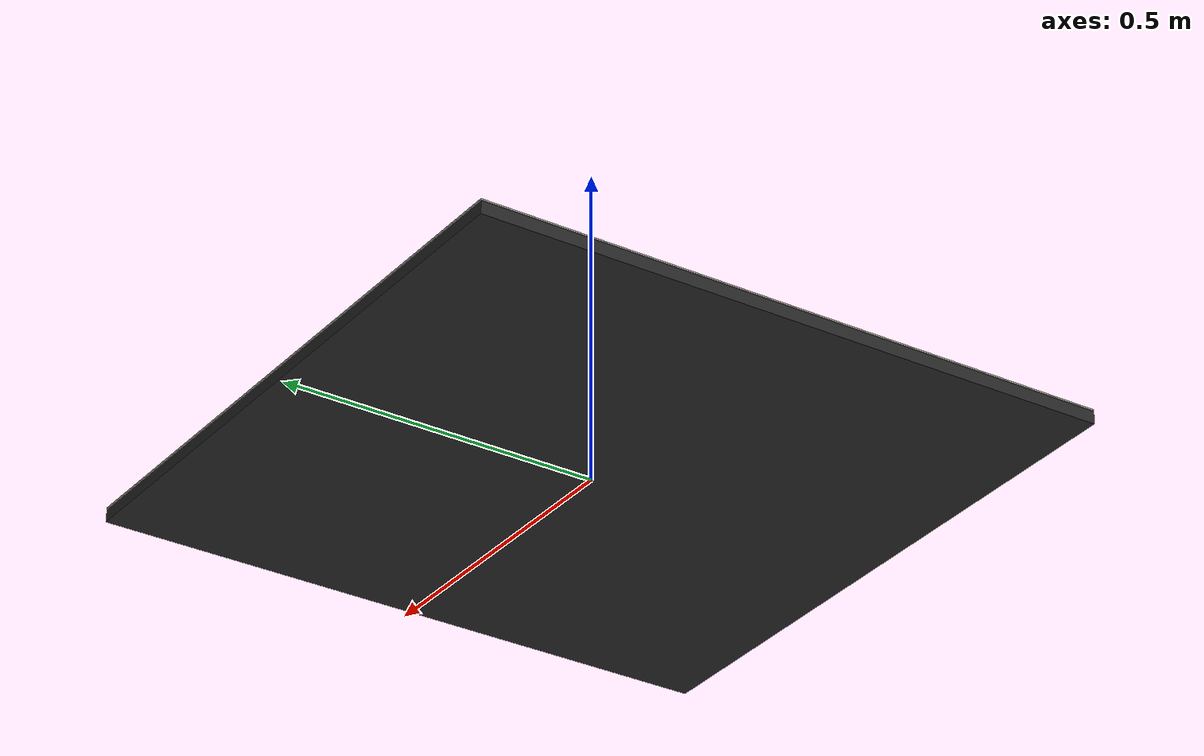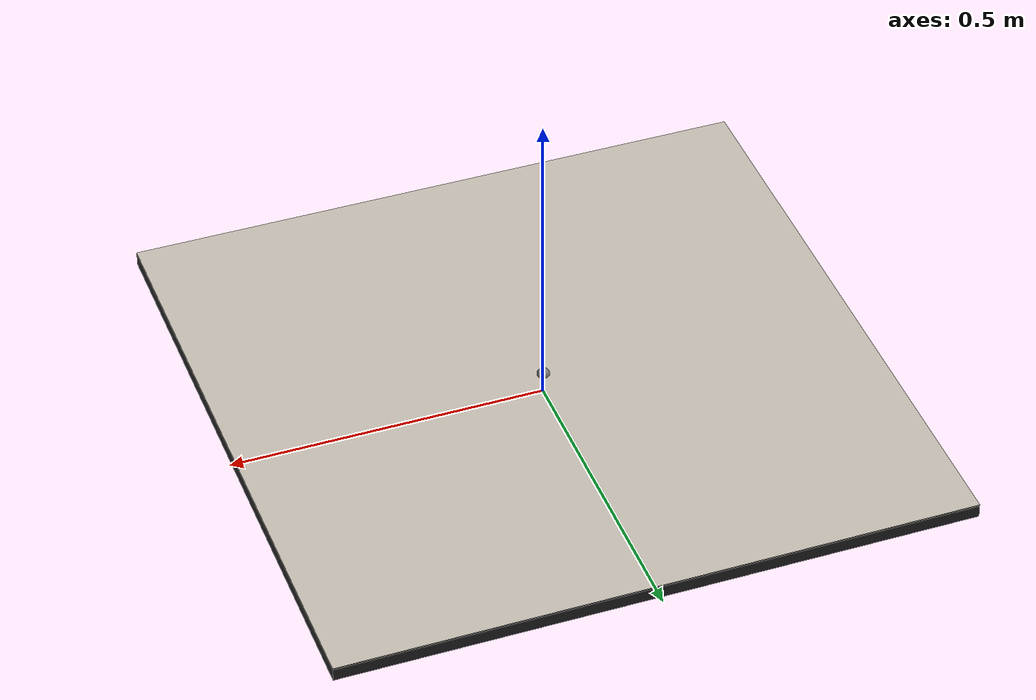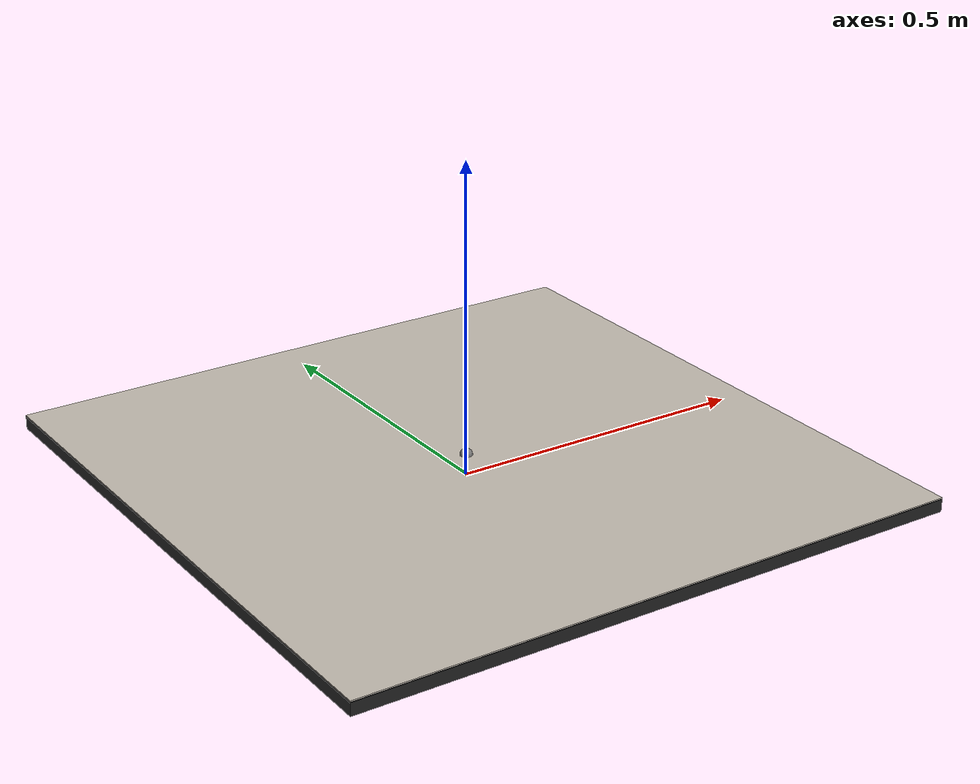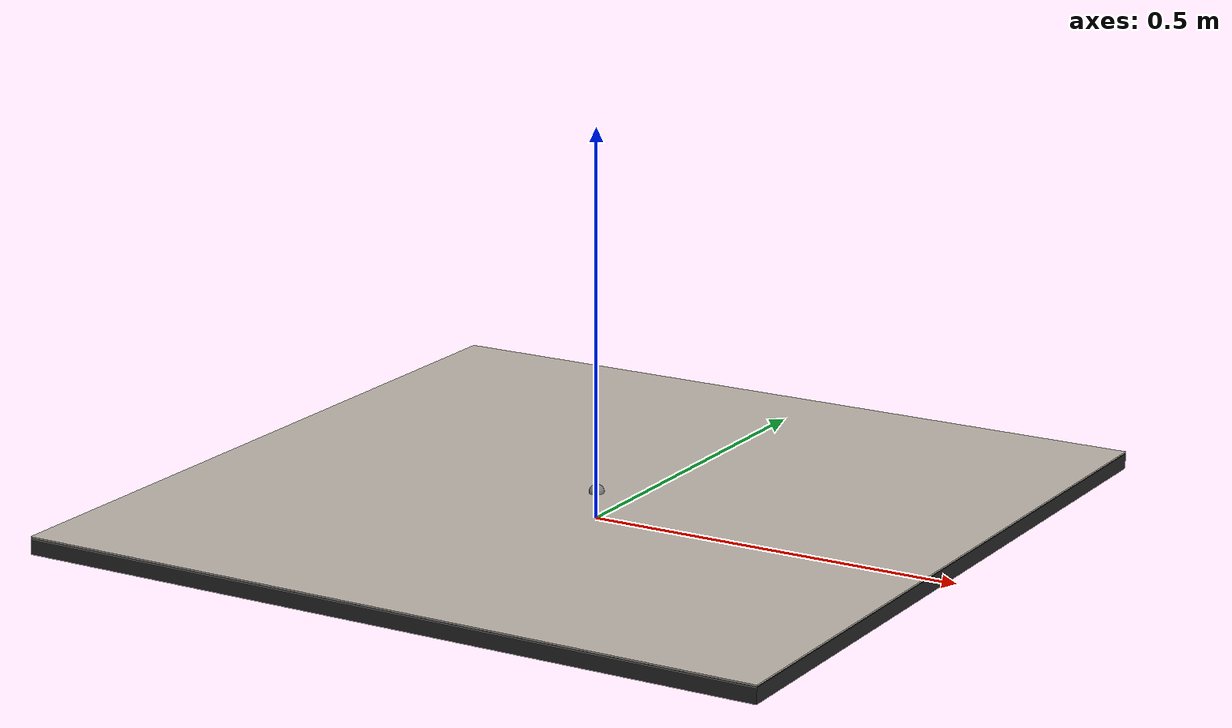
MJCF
<mujoco model="target_body_include">

  <asset>
    <texture name="tex_apriltag" type="2d"
              file="textures/apriltag_36h11_id0.png"/>
    <material name="mat_apriltag" texture="tex_apriltag" reflectance="0.0"
              specular="0.0"/>
    <material name="mat_plate" rgba="0.15 0.15 0.15 1" reflectance="0.0"/>
  </asset>

  <worldbody>
    <body name="ground_target" pos="0 0 0.02">
      <freejoint name="target_free"/>
      <!-- structural plate: carries mass, has collision, plain dark material -->
      <geom name="target_plate" type="box" size="0.5 0.5 0.01"
            material="mat_plate" mass="1.0"/>
      <geom name="target_tag_face" type="box" size="0.5 0.5 0.001"
            pos="0 0 0.012" material="mat_apriltag" mass="0"
            contype="0" conaffinity="0"/>
      <!-- site for cheap ground-truth pose logging during data collection,
           independent of whatever the vision pipeline detects -->
      <site name="target_site" pos="0 0 0.014" size="0.01"/>
    </body>
  </worldbody>
</mujoco>
